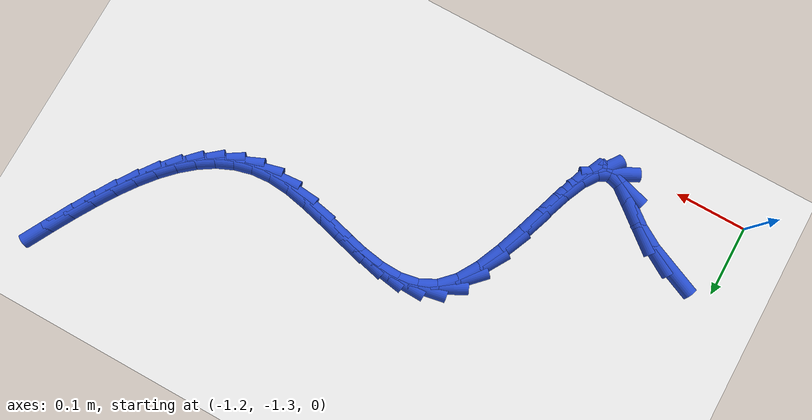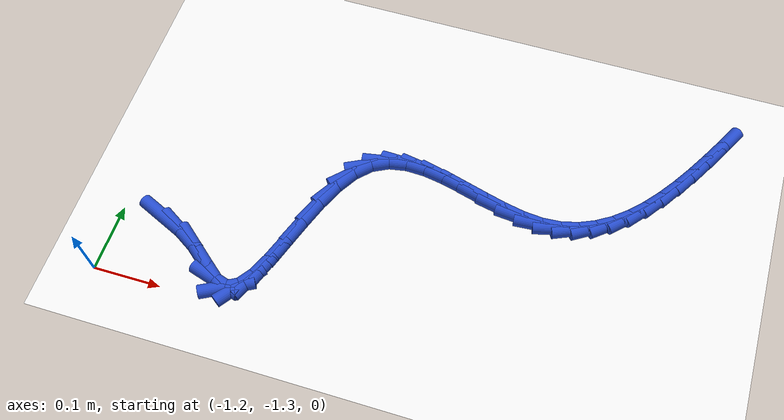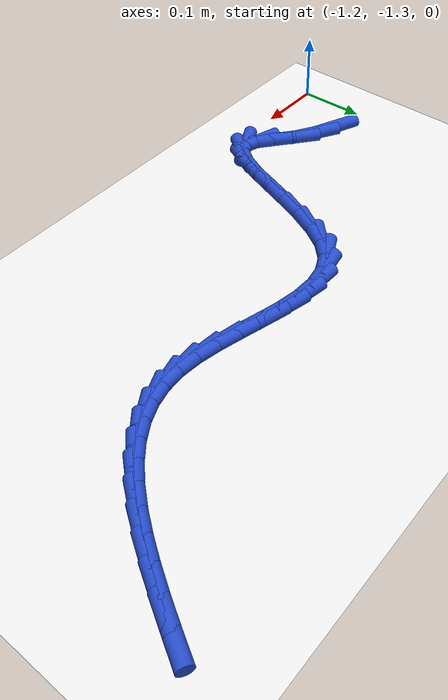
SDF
<sdf version="1.6">
 <world name="default">
  <model name="ground_plane">
   <static>1</static>
   <link name="link">
    <collision name="collision">
     <geometry><plane><normal>0 0 1</normal><size>100 100</size></plane></geometry>
     <surface><friction><ode><mu>100</mu><mu2>50</mu2></ode></friction></surface>
    </collision>
    <visual name="visual">
     <cast_shadows>0</cast_shadows>
     <geometry><plane><normal>0 0 1</normal><size>100 100</size></plane></geometry>
     <material>
      <script><uri>file://media/materials/scripts/gazebo.material</uri><name>Gazebo/WhiteGlow</name></script>
     </material>
    </visual>
   </link>
  </model>
  <model name="line">
   <link name="link_214">
    <pose>-1.1354774081123036 -1.2003032193506746 0.01 0 1.57 -0.4091482239728377</pose>
    <collision name="collision">
     <geometry><cylinder><radius>0.01</radius><length>0.08</length></cylinder></geometry>
    </collision>
    <visual name="visual">
     <material>
      <script><name>Gazebo/Blue</name><uri>file://media/materials/scripts/gazebo.material</uri></script>
     </material>
     <geometry><cylinder><radius>0.01</radius><length>0.08</length></cylinder></geometry>
    </visual>
   </link>
   <link name="link_215">
    <pose>-1.1023707486132572 -1.2146588925906119 0.01 0 1.57 -0.5424158200181803</pose>
    <collision name="collision">
     <geometry><cylinder><radius>0.01</radius><length>0.08</length></cylinder></geometry>
    </collision>
    <visual name="visual">
     <material>
      <script><name>Gazebo/Blue</name><uri>file://media/materials/scripts/gazebo.material</uri></script>
     </material>
     <geometry><cylinder><radius>0.01</radius><length>0.08</length></cylinder></geometry>
    </visual>
   </link>
   <link name="link_216">
    <pose>-1.072625762860534 -1.2325867384797737 0.01 0 1.57 -0.6848416736491458</pose>
    <collision name="collision">
     <geometry><cylinder><radius>0.01</radius><length>0.08</length></cylinder></geometry>
    </collision>
    <visual name="visual">
     <material>
      <script><name>Gazebo/Blue</name><uri>file://media/materials/scripts/gazebo.material</uri></script>
     </material>
     <geometry><cylinder><radius>0.01</radius><length>0.08</length></cylinder></geometry>
    </visual>
   </link>
   <link name="link_217">
    <pose>-1.0468660370189944 -1.2536247250980352 0.01 0 1.57 -0.6733319503668282</pose>
    <collision name="collision">
     <geometry><cylinder><radius>0.01</radius><length>0.08</length></cylinder></geometry>
    </collision>
    <visual name="visual">
     <material>
      <script><name>Gazebo/Blue</name><uri>file://media/materials/scripts/gazebo.material</uri></script>
     </material>
     <geometry><cylinder><radius>0.01</radius><length>0.08</length></cylinder></geometry>
    </visual>
   </link>
   <link name="link_218">
    <pose>-1.0249797289994622 -1.2710832547096156 0.01 0 1.57 -0.28465998234746825</pose>
    <collision name="collision">
     <geometry><cylinder><radius>0.01</radius><length>0.08</length></cylinder></geometry>
    </collision>
    <visual name="visual">
     <material>
      <script><name>Gazebo/Blue</name><uri>file://media/materials/scripts/gazebo.material</uri></script>
     </material>
     <geometry><cylinder><radius>0.01</radius><length>0.08</length></cylinder></geometry>
    </visual>
   </link>
   <link name="link_219">
    <pose>-1.00654858694636 -1.2764763255105103 0.01 0 1.57 0.487138608504307</pose>
    <collision name="collision">
     <geometry><cylinder><radius>0.01</radius><length>0.08</length></cylinder></geometry>
    </collision>
    <visual name="visual">
     <material>
      <script><name>Gazebo/Blue</name><uri>file://media/materials/scripts/gazebo.material</uri></script>
     </material>
     <geometry><cylinder><radius>0.01</radius><length>0.08</length></cylinder></geometry>
    </visual>
   </link>
   <link name="link_220">
    <pose>-0.9909421238791181 -1.268209296862724 0.01 0 1.57 0.9585919291379742</pose>
    <collision name="collision">
     <geometry><cylinder><radius>0.01</radius><length>0.08</length></cylinder></geometry>
    </collision>
    <visual name="visual">
     <material>
      <script><name>Gazebo/Blue</name><uri>file://media/materials/scripts/gazebo.material</uri></script>
     </material>
     <geometry><cylinder><radius>0.01</radius><length>0.08</length></cylinder></geometry>
    </visual>
   </link>
   <link name="link_221">
    <pose>-0.9773998882919472 -1.2489239988257774 0.01 0 1.57 1.1533700648050569</pose>
    <collision name="collision">
     <geometry><cylinder><radius>0.01</radius><length>0.08</length></cylinder></geometry>
    </collision>
    <visual name="visual">
     <material>
      <script><name>Gazebo/Blue</name><uri>file://media/materials/scripts/gazebo.material</uri></script>
     </material>
     <geometry><cylinder><radius>0.01</radius><length>0.08</length></cylinder></geometry>
    </visual>
   </link>
   <link name="link_222">
    <pose>-0.9651595382969905 -1.2213238824917187 0.01 0 1.57 1.2320632495574102</pose>
    <collision name="collision">
     <geometry><cylinder><radius>0.01</radius><length>0.08</length></cylinder></geometry>
    </collision>
    <visual name="visual">
     <material>
      <script><name>Gazebo/Blue</name><uri>file://media/materials/scripts/gazebo.material</uri></script>
     </material>
     <geometry><cylinder><radius>0.01</radius><length>0.08</length></cylinder></geometry>
    </visual>
   </link>
   <link name="link_223">
    <pose>-0.9534587320063901 -1.188112398952594 0.01 0 1.57 1.251943843793857</pose>
    <collision name="collision">
     <geometry><cylinder><radius>0.01</radius><length>0.08</length></cylinder></geometry>
    </collision>
    <visual name="visual">
     <material>
      <script><name>Gazebo/Blue</name><uri>file://media/materials/scripts/gazebo.material</uri></script>
     </material>
     <geometry><cylinder><radius>0.01</radius><length>0.08</length></cylinder></geometry>
    </visual>
   </link>
   <link name="link_224">
    <pose>-0.9415351275322886 -1.1519929993004514 0.01 0 1.57 1.2293374425546701</pose>
    <collision name="collision">
     <geometry><cylinder><radius>0.01</radius><length>0.08</length></cylinder></geometry>
    </collision>
    <visual name="visual">
     <material>
      <script><name>Gazebo/Blue</name><uri>file://media/materials/scripts/gazebo.material</uri></script>
     </material>
     <geometry><cylinder><radius>0.01</radius><length>0.08</length></cylinder></geometry>
    </visual>
   </link>
   <link name="link_225">
    <pose>-0.928626382986829 -1.1156691346273382 0.01 0 1.57 1.1619188864409524</pose>
    <collision name="collision">
     <geometry><cylinder><radius>0.01</radius><length>0.08</length></cylinder></geometry>
    </collision>
    <visual name="visual">
     <material>
      <script><name>Gazebo/Blue</name><uri>file://media/materials/scripts/gazebo.material</uri></script>
     </material>
     <geometry><cylinder><radius>0.01</radius><length>0.08</length></cylinder></geometry>
    </visual>
   </link>
   <link name="link_226">
    <pose>-0.9139701564821529 -1.0818442560253 0.01 0 1.57 1.0305673228466972</pose>
    <collision name="collision">
     <geometry><cylinder><radius>0.01</radius><length>0.08</length></cylinder></geometry>
    </collision>
    <visual name="visual">
     <material>
      <script><name>Gazebo/Blue</name><uri>file://media/materials/scripts/gazebo.material</uri></script>
     </material>
     <geometry><cylinder><radius>0.01</radius><length>0.08</length></cylinder></geometry>
    </visual>
   </link>
   <link name="link_227">
    <pose>-0.8968041061304038 -1.0532218145863874 0.01 0 1.57 0.7938143373873427</pose>
    <collision name="collision">
     <geometry><cylinder><radius>0.01</radius><length>0.08</length></cylinder></geometry>
    </collision>
    <visual name="visual">
     <material>
      <script><name>Gazebo/Blue</name><uri>file://media/materials/scripts/gazebo.material</uri></script>
     </material>
     <geometry><cylinder><radius>0.01</radius><length>0.08</length></cylinder></geometry>
    </visual>
   </link>
   <link name="link_228">
    <pose>-0.87638263709268 -1.0324536784801193 0.01 0 1.57 0.46899004090432467</pose>
    <collision name="collision">
     <geometry><cylinder><radius>0.01</radius><length>0.08</length></cylinder></geometry>
    </collision>
    <visual name="visual">
     <material>
      <script><name>Gazebo/Blue</name><uri>file://media/materials/scripts/gazebo.material</uri></script>
     </material>
     <geometry><cylinder><radius>0.01</radius><length>0.08</length></cylinder></geometry>
    </visual>
   </link>
   <link name="link_229">
    <pose>-0.852549203789588 -1.0203773733970434 0.01 0 1.57 0.17802856549200022</pose>
    <collision name="collision">
     <geometry><cylinder><radius>0.01</radius><length>0.08</length></cylinder></geometry>
    </collision>
    <visual name="visual">
     <material>
      <script><name>Gazebo/Blue</name><uri>file://media/materials/scripts/gazebo.material</uri></script>
     </material>
     <geometry><cylinder><radius>0.01</radius><length>0.08</length></cylinder></geometry>
    </visual>
   </link>
   <link name="link_230">
    <pose>-0.8258784082152633 -1.0155784026719554 0.01 0 1.57 -0.03195621261760532</pose>
    <collision name="collision">
     <geometry><cylinder><radius>0.01</radius><length>0.08</length></cylinder></geometry>
    </collision>
    <visual name="visual">
     <material>
      <script><name>Gazebo/Blue</name><uri>file://media/materials/scripts/gazebo.material</uri></script>
     </material>
     <geometry><cylinder><radius>0.01</radius><length>0.08</length></cylinder></geometry>
    </visual>
   </link>
   <link name="link_231">
    <pose>-0.7969904357840624 -1.0165018672296504 0.01 0 1.57 -0.1654733607189944</pose>
    <collision name="collision">
     <geometry><cylinder><radius>0.01</radius><length>0.08</length></cylinder></geometry>
    </collision>
    <visual name="visual">
     <material>
      <script><name>Gazebo/Blue</name><uri>file://media/materials/scripts/gazebo.material</uri></script>
     </material>
     <geometry><cylinder><radius>0.01</radius><length>0.08</length></cylinder></geometry>
    </visual>
   </link>
   <link name="link_232">
    <pose>-0.7665054719103425 -1.0215928679949238 0.01 0 1.57 -0.24013246494387114</pose>
    <collision name="collision">
     <geometry><cylinder><radius>0.01</radius><length>0.08</length></cylinder></geometry>
    </collision>
    <visual name="visual">
     <material>
      <script><name>Gazebo/Blue</name><uri>file://media/materials/scripts/gazebo.material</uri></script>
     </material>
     <geometry><cylinder><radius>0.01</radius><length>0.08</length></cylinder></geometry>
    </visual>
   </link>
   <link name="link_233">
    <pose>-0.7350437020084604 -1.02929650589257 0.01 0 1.57 -0.2686968945277339</pose>
    <collision name="collision">
     <geometry><cylinder><radius>0.01</radius><length>0.08</length></cylinder></geometry>
    </collision>
    <visual name="visual">
     <material>
      <script><name>Gazebo/Blue</name><uri>file://media/materials/scripts/gazebo.material</uri></script>
     </material>
     <geometry><cylinder><radius>0.01</radius><length>0.08</length></cylinder></geometry>
    </visual>
   </link>
   <link name="link_234">
    <pose>-0.703225311492772 -1.038057881847385 0.01 0 1.57 -0.2561471066983596</pose>
    <collision name="collision">
     <geometry><cylinder><radius>0.01</radius><length>0.08</length></cylinder></geometry>
    </collision>
    <visual name="visual">
     <material>
      <script><name>Gazebo/Blue</name><uri>file://media/materials/scripts/gazebo.material</uri></script>
     </material>
     <geometry><cylinder><radius>0.01</radius><length>0.08</length></cylinder></geometry>
    </visual>
   </link>
   <link name="link_235">
    <pose>-0.6716704857776356 -1.046322096784162 0.01 0 1.57 -0.1998377731056058</pose>
    <collision name="collision">
     <geometry><cylinder><radius>0.01</radius><length>0.08</length></cylinder></geometry>
    </collision>
    <visual name="visual">
     <material>
      <script><name>Gazebo/Blue</name><uri>file://media/materials/scripts/gazebo.material</uri></script>
     </material>
     <geometry><cylinder><radius>0.01</radius><length>0.08</length></cylinder></geometry>
    </visual>
   </link>
   <link name="link_236">
    <pose>-0.6409994102774079 -1.0525342516276974 0.01 0 1.57 -0.08918195142829251</pose>
    <collision name="collision">
     <geometry><cylinder><radius>0.01</radius><length>0.08</length></cylinder></geometry>
    </collision>
    <visual name="visual">
     <material>
      <script><name>Gazebo/Blue</name><uri>file://media/materials/scripts/gazebo.material</uri></script>
     </material>
     <geometry><cylinder><radius>0.01</radius><length>0.08</length></cylinder></geometry>
    </visual>
   </link>
   <link name="link_237">
    <pose>-0.6118310559778848 -1.0551424607812585 0.01 0 1.57 0.07281016327341104</pose>
    <collision name="collision">
     <geometry><cylinder><radius>0.01</radius><length>0.08</length></cylinder></geometry>
    </collision>
    <visual name="visual">
     <material>
      <script><name>Gazebo/Blue</name><uri>file://media/materials/scripts/gazebo.material</uri></script>
     </material>
     <geometry><cylinder><radius>0.01</radius><length>0.08</length></cylinder></geometry>
    </visual>
   </link>
   <link name="link_238">
    <pose>-0.5845593400399769 -1.0531532863648503 0.01 0 1.57 0.24513810843218026</pose>
    <collision name="collision">
     <geometry><cylinder><radius>0.01</radius><length>0.08</length></cylinder></geometry>
    </collision>
    <visual name="visual">
     <material>
      <script><name>Gazebo/Blue</name><uri>file://media/materials/scripts/gazebo.material</uri></script>
     </material>
     <geometry><cylinder><radius>0.01</radius><length>0.08</length></cylinder></geometry>
    </visual>
   </link>
   <link name="link_239">
    <pose>-0.5590911060256653 -1.0467819130994986 0.01 0 1.57 0.4109495394862178</pose>
    <collision name="collision">
     <geometry><cylinder><radius>0.01</radius><length>0.08</length></cylinder></geometry>
    </collision>
    <visual name="visual">
     <material>
      <script><name>Gazebo/Blue</name><uri>file://media/materials/scripts/gazebo.material</uri></script>
     </material>
     <geometry><cylinder><radius>0.01</radius><length>0.08</length></cylinder></geometry>
    </visual>
   </link>
   <link name="link_240">
    <pose>-0.5352695645343298 -1.0364014243008985 0.01 0 1.57 0.5605048547885559</pose>
    <collision name="collision">
     <geometry><cylinder><radius>0.01</radius><length>0.08</length></cylinder></geometry>
    </collision>
    <visual name="visual">
     <material>
      <script><name>Gazebo/Blue</name><uri>file://media/materials/scripts/gazebo.material</uri></script>
     </material>
     <geometry><cylinder><radius>0.01</radius><length>0.08</length></cylinder></geometry>
    </visual>
   </link>
   <link name="link_241">
    <pose>-0.5129379261653494 -1.0223849032847434 0.01 0 1.57 0.6885430871442443</pose>
    <collision name="collision">
     <geometry><cylinder><radius>0.01</radius><length>0.08</length></cylinder></geometry>
    </collision>
    <visual name="visual">
     <material>
      <script><name>Gazebo/Blue</name><uri>file://media/materials/scripts/gazebo.material</uri></script>
     </material>
     <geometry><cylinder><radius>0.01</radius><length>0.08</length></cylinder></geometry>
    </visual>
   </link>
   <link name="link_242">
    <pose>-0.4919394015181039 -1.0051054333667282 0.01 0 1.57 0.7940781616221538</pose>
    <collision name="collision">
     <geometry><cylinder><radius>0.01</radius><length>0.08</length></cylinder></geometry>
    </collision>
    <visual name="visual">
     <material>
      <script><name>Gazebo/Blue</name><uri>file://media/materials/scripts/gazebo.material</uri></script>
     </material>
     <geometry><cylinder><radius>0.01</radius><length>0.08</length></cylinder></geometry>
    </visual>
   </link>
   <link name="link_243">
    <pose>-0.4721172011919721 -0.9849360978625467 0.01 0 1.57 0.8787286927931772</pose>
    <collision name="collision">
     <geometry><cylinder><radius>0.01</radius><length>0.08</length></cylinder></geometry>
    </collision>
    <visual name="visual">
     <material>
      <script><name>Gazebo/Blue</name><uri>file://media/materials/scripts/gazebo.material</uri></script>
     </material>
     <geometry><cylinder><radius>0.01</radius><length>0.08</length></cylinder></geometry>
    </visual>
   </link>
   <link name="link_244">
    <pose>-0.4533145357863344 -0.962249980087894 0.01 0 1.57 0.9451187711252678</pose>
    <collision name="collision">
     <geometry><cylinder><radius>0.01</radius><length>0.08</length></cylinder></geometry>
    </collision>
    <visual name="visual">
     <material>
      <script><name>Gazebo/Blue</name><uri>file://media/materials/scripts/gazebo.material</uri></script>
     </material>
     <geometry><cylinder><radius>0.01</radius><length>0.08</length></cylinder></geometry>
    </visual>
   </link>
   <link name="link_245">
    <pose>-0.43537461590057014 -0.9374201633584645 0.01 0 1.57 0.9959108811715631</pose>
    <collision name="collision">
     <geometry><cylinder><radius>0.01</radius><length>0.08</length></cylinder></geometry>
    </collision>
    <visual name="visual">
     <material>
      <script><name>Gazebo/Blue</name><uri>file://media/materials/scripts/gazebo.material</uri></script>
     </material>
     <geometry><cylinder><radius>0.01</radius><length>0.08</length></cylinder></geometry>
    </visual>
   </link>
   <link name="link_246">
    <pose>-0.4181406521340582 -0.910819730989952 0.01 0 1.57 1.0333756398747673</pose>
    <collision name="collision">
     <geometry><cylinder><radius>0.01</radius><length>0.08</length></cylinder></geometry>
    </collision>
    <visual name="visual">
     <material>
      <script><name>Gazebo/Blue</name><uri>file://media/materials/scripts/gazebo.material</uri></script>
     </material>
     <geometry><cylinder><radius>0.01</radius><length>0.08</length></cylinder></geometry>
    </visual>
   </link>
   <link name="link_247">
    <pose>-0.40145585508617854 -0.8828217662980512 0.01 0 1.57 1.059262866011304</pose>
    <collision name="collision">
     <geometry><cylinder><radius>0.01</radius><length>0.08</length></cylinder></geometry>
    </collision>
    <visual name="visual">
     <material>
      <script><name>Gazebo/Blue</name><uri>file://media/materials/scripts/gazebo.material</uri></script>
     </material>
     <geometry><cylinder><radius>0.01</radius><length>0.08</length></cylinder></geometry>
    </visual>
   </link>
   <link name="link_248">
    <pose>-0.3851634353563102 -0.8537993525984563 0.01 0 1.57 1.074802680222858</pose>
    <collision name="collision">
     <geometry><cylinder><radius>0.01</radius><length>0.08</length></cylinder></geometry>
    </collision>
    <visual name="visual">
     <material>
      <script><name>Gazebo/Blue</name><uri>file://media/materials/scripts/gazebo.material</uri></script>
     </material>
     <geometry><cylinder><radius>0.01</radius><length>0.08</length></cylinder></geometry>
    </visual>
   </link>
  </model>
 </world>
</sdf>
